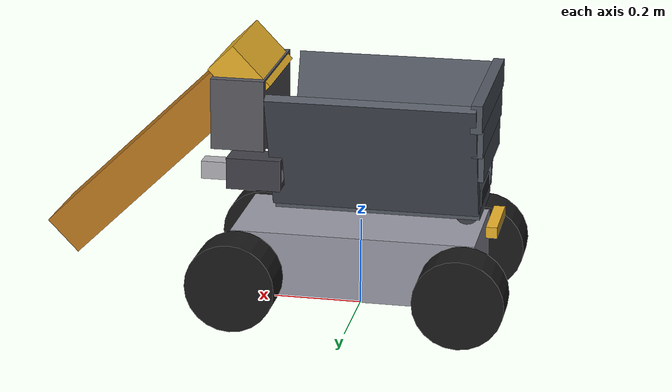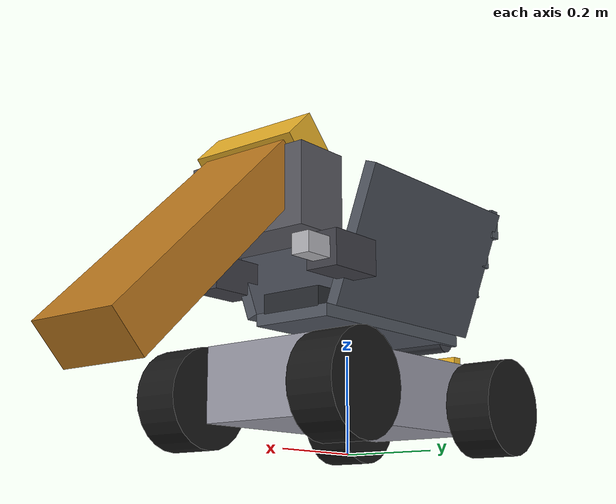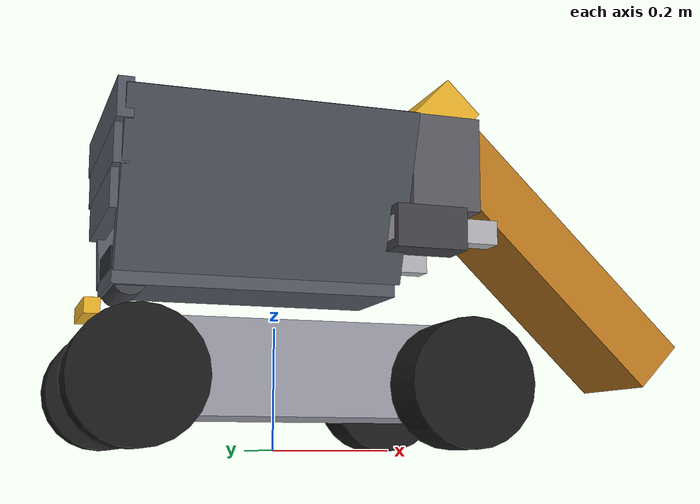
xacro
<?xml version="1.0"?>
<!-- 4-wheel skid-steer rover. Frames follow REP 103/105: x forward, y left, z up.
     Values marked ASSUMED are placeholders: replace them from your CAD/scale. -->
<robot name="rover" xmlns:xacro="http://www.ros.org/wiki/xacro">

  <xacro:arg name="can_interface" default="can0"/>
  <xacro:arg name="protocol" default="spark_max"/>   <!-- test_loopback for vcan bench tests -->

  <!-- ===== Given dimensions (inches converted to metres) ===== -->
  <xacro:property name="inch" value="0.0254"/>
  <xacro:property name="wheel_radius" value="${4 * inch}"/>      <!-- 8 in diameter -->
  <xacro:property name="wheelbase"    value="${20 * inch}"/>     <!-- front/back wheel centres -->
  <xacro:property name="track"        value="${15 * inch}"/>     <!-- left/right wheel centres -->

  <!-- ===== ASSUMED values ===== -->
  <xacro:property name="wheel_width"      value="0.10"/>
  <xacro:property name="wheel_mass"       value="1.0"/>
  <xacro:property name="chassis_length"   value="0.55"/>
  <xacro:property name="chassis_width"    value="0.26"/>   <!-- must fit between inner wheel faces -->
  <xacro:property name="chassis_height"   value="0.15"/>
  <xacro:property name="chassis_clearance" value="0.05"/>  <!-- ground to chassis bottom -->
  <xacro:property name="chassis_mass"     value="20.0"/>
  <xacro:property name="gear_ratio"       value="1.0"/>    <!-- motor revs per wheel rev -->
  <xacro:property name="max_wheel_velocity" value="20.0"/> <!-- wheel rad/s at 100% duty: measure -->

  <!-- ===== Excavation block model (CDR representation; replace with CAD values) ===== -->
  <xacro:property name="excavation_length" value="${23 * inch}"/>
  <xacro:property name="excavation_width" value="0.20"/>
  <xacro:property name="excavation_rail_height" value="0.10"/>
  <xacro:property name="excavation_pivot_x" value="${chassis_length / 2 - 0.02}"/>
  <xacro:property name="excavation_pivot_z" value="0.45"/>
  <!-- Retraction is the deep pose; extension rotates the ladder upward. -->
  <xacro:property name="excavation_angle" value="1.0"/>
  <xacro:property name="actuator_mount_x" value="0.15"/>
  <xacro:property name="actuator_mount_z" value="0.25"/>
  <xacro:property name="actuator_stroke" value="${4 * inch}"/>

  <!-- ===== Static hopper ===== -->
  <xacro:property name="hopper_length" value="0.46"/>
  <xacro:property name="hopper_bottom_width" value="0.18"/>
  <xacro:property name="hopper_top_width" value="0.42"/>
  <xacro:property name="hopper_height" value="0.28"/>
  <xacro:property name="hopper_wall_thickness" value="0.025"/>
  <xacro:property name="hopper_bottom_z" value="0.16"/>
  <xacro:property name="hopper_side_angle" value="${20 * pi / 180}"/>

  <!-- ===== Inertia helpers ===== -->
  <xacro:macro name="cylinder_inertia" params="m r h">
    <inertia ixx="${m / 12 * (3 * r * r + h * h)}" iyy="${m / 12 * (3 * r * r + h * h)}"
             izz="${m * r * r / 2}" ixy="0" ixz="0" iyz="0"/>
  </xacro:macro>
  <xacro:macro name="box_inertia" params="m x y z">
    <inertia ixx="${m / 12 * (y * y + z * z)}" iyy="${m / 12 * (x * x + z * z)}"
             izz="${m / 12 * (x * x + y * y)}" ixy="0" ixz="0" iyz="0"/>
  </xacro:macro>

  <!-- ===== Links ===== -->
  <link name="base_footprint"/>

  <!-- base_link sits at axle height, centred between the four wheels -->
  <joint name="base_footprint_joint" type="fixed">
    <parent link="base_footprint"/>
    <child link="base_link"/>
    <origin xyz="0 0 ${wheel_radius}" rpy="0 0 0"/>
  </joint>

  <link name="base_link">
    <visual>
      <origin xyz="0 0 ${chassis_clearance + chassis_height / 2 - wheel_radius}" rpy="0 0 0"/>
      <geometry><box size="${chassis_length} ${chassis_width} ${chassis_height}"/></geometry>
      <material name="chassis_grey"><color rgba="0.6 0.6 0.65 1"/></material>
    </visual>
    <collision>
      <origin xyz="0 0 ${chassis_clearance + chassis_height / 2 - wheel_radius}" rpy="0 0 0"/>
      <geometry><box size="${chassis_length} ${chassis_width} ${chassis_height}"/></geometry>
    </collision>
    <inertial>
      <origin xyz="0 0 ${chassis_clearance + chassis_height / 2 - wheel_radius}" rpy="0 0 0"/>
      <mass value="${chassis_mass}"/>
      <xacro:box_inertia m="${chassis_mass}" x="${chassis_length}" y="${chassis_width}" z="${chassis_height}"/>
    </inertial>
  </link>

  <!-- The hopper runs from the rear of the excavation area toward the rear
       of the rover. Its open top is wider than its bottom. -->
  <link name="hopper_link">
    <visual>
      <origin xyz="-0.05 0 ${hopper_bottom_z}"/>
      <geometry>
        <box size="${hopper_length} ${hopper_bottom_width} ${hopper_wall_thickness}"/>
      </geometry>
      <material name="hopper_material">
        <color rgba="0.32 0.34 0.38 1"/>
      </material>
    </visual>
    <visual>
      <origin xyz="-0.05 ${-(hopper_bottom_width + hopper_top_width) / 4} ${hopper_bottom_z + hopper_height / 2}"
              rpy="${hopper_side_angle} 0 0"/>
      <geometry>
        <box size="${hopper_length} ${hopper_wall_thickness} ${hopper_height}"/>
      </geometry>
      <material name="hopper_material_left">
        <color rgba="0.32 0.34 0.38 1"/>
      </material>
    </visual>
    <visual>
      <origin xyz="-0.05 ${(hopper_bottom_width + hopper_top_width) / 4} ${hopper_bottom_z + hopper_height / 2}"
              rpy="${-hopper_side_angle} 0 0"/>
      <geometry>
        <box size="${hopper_length} ${hopper_wall_thickness} ${hopper_height}"/>
      </geometry>
      <material name="hopper_material_right">
        <color rgba="0.32 0.34 0.38 1"/>
      </material>
    </visual>
    <visual>
      <origin xyz="${-0.05 - hopper_length / 2} 0 ${hopper_bottom_z + 4 * hopper_height / 9}"/>
      <geometry>
        <box size="${hopper_wall_thickness} ${hopper_bottom_width + 4 * (hopper_top_width - hopper_bottom_width) / 9} ${2 * hopper_height / 9}"/>
      </geometry>
      <material name="hopper_rear_wall_material">
        <color rgba="0.32 0.34 0.38 1"/>
      </material>
    </visual>
    <visual>
      <origin xyz="${-0.05 - hopper_length / 2} 0 ${hopper_bottom_z + 6 * hopper_height / 9}"/>
      <geometry>
        <box size="${hopper_wall_thickness} ${hopper_bottom_width + 6 * (hopper_top_width - hopper_bottom_width) / 9} ${2 * hopper_height / 9}"/>
      </geometry>
      <material name="hopper_rear_wall_material_2">
        <color rgba="0.32 0.34 0.38 1"/>
      </material>
    </visual>
    <visual>
      <origin xyz="${-0.05 - hopper_length / 2} 0 ${hopper_bottom_z + 8 * hopper_height / 9}"/>
      <geometry>
        <box size="${hopper_wall_thickness} ${hopper_bottom_width + 8 * (hopper_top_width - hopper_bottom_width) / 9} ${2 * hopper_height / 9}"/>
      </geometry>
      <material name="hopper_rear_wall_material_3">
        <color rgba="0.32 0.34 0.38 1"/>
      </material>
    </visual>
  </link>
  <joint name="hopper_joint" type="fixed">
    <parent link="base_link"/>
    <child link="hopper_link"/>
    <origin xyz="0 0 0"/>
  </joint>

  <!-- ===== Wheel macro: continuous joint about +y; positive rotation drives the rover forward ===== -->
  <xacro:macro name="wheel" params="name x y">
    <link name="${name}_wheel">
      <visual>
        <origin xyz="0 0 0" rpy="${pi / 2} 0 0"/>
        <geometry><cylinder radius="${wheel_radius}" length="${wheel_width}"/></geometry>
        <material name="wheel_black"><color rgba="0.1 0.1 0.1 1"/></material>
      </visual>
      <collision>
        <origin xyz="0 0 0" rpy="${pi / 2} 0 0"/>
        <geometry><cylinder radius="${wheel_radius}" length="${wheel_width}"/></geometry>
      </collision>
      <inertial>
        <origin xyz="0 0 0" rpy="${pi / 2} 0 0"/>
        <mass value="${wheel_mass}"/>
        <xacro:cylinder_inertia m="${wheel_mass}" r="${wheel_radius}" h="${wheel_width}"/>
      </inertial>
    </link>
    <joint name="${name}_wheel_joint" type="continuous">
      <parent link="base_link"/>
      <child link="${name}_wheel"/>
      <origin xyz="${x} ${y} 0" rpy="0 0 0"/>
      <axis xyz="0 1 0"/>
    </joint>
  </xacro:macro>

  <xacro:wheel name="front_left"  x="${ wheelbase / 2}" y="${ track / 2}"/>
  <xacro:wheel name="rear_left"   x="${-wheelbase / 2}" y="${ track / 2}"/>
  <xacro:wheel name="front_right" x="${ wheelbase / 2}" y="${-track / 2}"/>
  <xacro:wheel name="rear_right"  x="${-wheelbase / 2}" y="${-track / 2}"/>

  <link name="excavation_mount">
    <visual>
      <origin xyz="${excavation_pivot_x} 0 ${excavation_pivot_z - 0.08}"/>
      <geometry><box size="0.12 0.28 0.16"/></geometry>
      <material name="excavation_mount_material">
        <color rgba="0.35 0.35 0.38 1"/>
      </material>
    </visual>
  </link>
  <joint name="excavation_mount_joint" type="fixed">
    <parent link="base_link"/>
    <child link="excavation_mount"/>
    <origin xyz="0 0 0"/>
  </joint>

  <link name="excavation_ladder">
    <visual>
      <origin xyz="${excavation_length / 2} 0 0"/>
      <geometry>
        <box size="${excavation_length} ${excavation_width} ${excavation_rail_height}"/>
      </geometry>
      <material name="excavation_ladder_material">
        <color rgba="0.75 0.48 0.12 1"/>
      </material>
    </visual>
  </link>
  <joint name="excavation_pivot_joint" type="revolute">
    <parent link="base_link"/>
    <child link="excavation_ladder"/>
    <origin xyz="${excavation_pivot_x} 0 ${excavation_pivot_z}"
            rpy="0 ${excavation_angle} 3.14"/>
    <axis xyz="0 1 0"/>
    <limit lower="0.8" upper="1.95" effort="1.0" velocity="1.0"/>
    <!-- The 180-degree yaw reverses the effective pivot direction. -->
    <mimic joint="linear_actuator_left_joint" multiplier="4.9"
            offset="${excavation_angle}"/>
  </joint>

  <link name="bucket_drive_link"/>
  <joint name="bucket_joint" type="continuous">
    <parent link="excavation_ladder"/>
    <child link="bucket_drive_link"/>
    <origin xyz="0.08 0 0.10"/>
    <axis xyz="0 1 0"/>
  </joint>

  <!-- Visual-only bucket carriers. Their positions are updated around this
       rectangular path by bucket_chain_visualizer from bucket_joint state. -->
  <xacro:macro name="chain_bucket" params="index">
    <link name="bucket_chain_${index}_link">
      <visual>
        <origin xyz="0 0 0"/>
        <geometry><box size="0.08 0.24 0.12"/></geometry>
        <material name="moving_bucket_material_${index}">
          <color rgba="0.92 0.70 0.16 1"/>
        </material>
      </visual>
    </link>
    <link name="bucket_chain_${index}_x_link"/>
    <joint name="bucket_chain_${index}_x_joint" type="prismatic">
      <parent link="excavation_ladder"/>
      <child link="bucket_chain_${index}_x_link"/>
      <origin xyz="0 0 0"/>
      <axis xyz="1 0 0"/>
      <limit lower="0" upper="${excavation_length}" effort="1.0" velocity="1.0"/>
    </joint>
    <joint name="bucket_chain_${index}_z_joint" type="prismatic">
      <parent link="bucket_chain_${index}_x_link"/>
      <child link="bucket_chain_${index}_link"/>
      <origin xyz="0 0 0"/>
      <axis xyz="0 0 1"/>
      <limit lower="-0.16" upper="0.16" effort="1.0" velocity="1.0"/>
    </joint>
  </xacro:macro>
  <xacro:chain_bucket index="0"/>
  <xacro:chain_bucket index="1"/>
  <xacro:chain_bucket index="2"/>
  <xacro:chain_bucket index="3"/>

  <link name="linear_actuator_left_body">
    <visual>
      <origin xyz="0 0 0"/>
      <geometry><box size="0.12 0.07 0.07"/></geometry>
      <material name="actuator_body_material">
        <color rgba="0.25 0.25 0.28 1"/>
      </material>
    </visual>
  </link>
  <joint name="linear_actuator_left_body_joint" type="fixed">
    <parent link="base_link"/>
    <child link="linear_actuator_left_body"/>
    <origin xyz="${actuator_mount_x + 0.06} ${track / 2 - 0.04} ${actuator_mount_z}"/>
  </joint>

  <link name="linear_actuator_left_link">
    <visual>
      <origin xyz="0.09 0 0"/>
      <geometry><box size="0.18 0.04 0.04"/></geometry>
      <material name="actuator_rod_material">
        <color rgba="0.70 0.70 0.72 1"/>
      </material>
    </visual>
  </link>
  <joint name="linear_actuator_left_joint" type="prismatic">
    <parent link="base_link"/>
    <child link="linear_actuator_left_link"/>
    <origin xyz="${actuator_mount_x} ${track / 2 - 0.04} ${actuator_mount_z}"/>
    <axis xyz="1 0 0"/>
    <limit lower="0" upper="${actuator_stroke}" effort="1.0" velocity="0.08"/>
  </joint>

  <link name="linear_actuator_right_body">
    <visual>
      <origin xyz="0 0 0"/>
      <geometry><box size="0.12 0.07 0.07"/></geometry>
      <material name="actuator_body_material_2">
        <color rgba="0.25 0.25 0.28 1"/>
      </material>
    </visual>
  </link>
  <joint name="linear_actuator_right_body_joint" type="fixed">
    <parent link="base_link"/>
    <child link="linear_actuator_right_body"/>
    <origin xyz="${actuator_mount_x + 0.06} ${-track / 2 + 0.04} ${actuator_mount_z}"/>
  </joint>

  <link name="linear_actuator_right_link">
    <visual>
      <origin xyz="0.09 0 0"/>
      <geometry><box size="0.18 0.04 0.04"/></geometry>
      <material name="actuator_rod_material_2">
        <color rgba="0.70 0.70 0.72 1"/>
      </material>
    </visual>
  </link>
  <joint name="linear_actuator_right_joint" type="prismatic">
    <parent link="base_link"/>
    <child link="linear_actuator_right_link"/>
    <origin xyz="${actuator_mount_x} ${-track / 2 + 0.04} ${actuator_mount_z}"/>
    <axis xyz="1 0 0"/>
    <limit lower="0" upper="${actuator_stroke}" effort="1.0" velocity="0.08"/>
  </joint>

  <!-- Static conveyor bed along the bottom of the hopper. -->
  <link name="deposition_conveyor_bed">
    <visual>
      <origin xyz="-0.05 0 0.19"/>
      <geometry><box size="0.46 0.14 0.04"/></geometry>
      <material name="conveyor_bed_material">
        <color rgba="0.16 0.17 0.19 1"/>
      </material>
    </visual>
  </link>
  <joint name="deposition_conveyor_bed_joint" type="fixed">
    <parent link="base_link"/>
    <child link="deposition_conveyor_bed"/>
    <origin xyz="0 0 0"/>
  </joint>

  <!-- The deposition motor drives the rear conveyor roller and cleats. -->
  <link name="deposition_link">
    <visual>
      <geometry><cylinder radius="0.0275" length="0.16"/></geometry>
      <origin xyz="0 0 0" rpy="${pi / 2} 0 0"/>
      <material name="conveyor_roller_material">
        <color rgba="0.25 0.26 0.29 1"/>
      </material>
    </visual>
    <visual>
      <origin xyz="0.055 0 0.045"/>
      <geometry><box size="0.025 0.15 0.025"/></geometry>
      <material name="conveyor_cleat_material">
        <color rgba="0.92 0.70 0.16 1"/>
      </material>
    </visual>
    <visual>
      <origin xyz="-0.055 0 -0.045"/>
      <geometry><box size="0.025 0.15 0.025"/></geometry>
      <material name="conveyor_cleat_material_2">
        <color rgba="0.92 0.70 0.16 1"/>
      </material>
    </visual>
  </link>
  <joint name="deposition_joint" type="continuous">
    <parent link="base_link"/>
    <child link="deposition_link"/>
    <origin xyz="-0.25 0 ${hopper_bottom_z}"/>
    <axis xyz="0 -1 0"/>
  </joint>

  <ros2_control name="spark_max_system" type="system">
    <hardware>
      <plugin>spark_max_hardware/SparkMaxSystem</plugin>
      <param name="can_interface">$(arg can_interface)</param>
      <param name="protocol">$(arg protocol)</param>
      <param name="feedback_timeout_ms">200</param>
    </hardware>

    <joint name="front_left_wheel_joint">
      <command_interface name="velocity"/>
      <state_interface name="position"/><state_interface name="velocity"/><state_interface name="current"/>
      <param name="device_id">1</param>
      <param name="max_velocity">${max_wheel_velocity}</param>
      <param name="gear_ratio">${gear_ratio}</param>
    </joint>
    <joint name="rear_left_wheel_joint">
      <command_interface name="velocity"/>
      <state_interface name="position"/><state_interface name="velocity"/><state_interface name="current"/>
      <param name="device_id">3</param>
      <param name="max_velocity">${max_wheel_velocity}</param>
      <param name="gear_ratio">${gear_ratio}</param>
    </joint>
    <joint name="front_right_wheel_joint">
      <command_interface name="velocity"/>
      <state_interface name="position"/><state_interface name="velocity"/><state_interface name="current"/>
      <param name="device_id">2</param>
      <param name="max_velocity">${max_wheel_velocity}</param>
      <param name="gear_ratio">${gear_ratio}</param>
      <param name="invert">true</param>
    </joint>
    <joint name="rear_right_wheel_joint">
      <command_interface name="velocity"/>
      <state_interface name="position"/><state_interface name="velocity"/><state_interface name="current"/>
      <param name="device_id">4</param>
      <param name="max_velocity">${max_wheel_velocity}</param>
      <param name="gear_ratio">${gear_ratio}</param>
      <param name="invert">true</param>
    </joint>

    <!-- Excavation / deposition: raw duty cycle (matches the old duty_cycle_setpoint topics) -->
    <joint name="bucket_joint">
      <command_interface name="duty_cycle"/>
      <state_interface name="position"/><state_interface name="velocity"/><state_interface name="current"/>
      <param name="device_id">5</param>
    </joint>
    <joint name="linear_actuator_left_joint">
      <command_interface name="duty_cycle"/>
      <state_interface name="position"/><state_interface name="velocity"/><state_interface name="current"/>
      <param name="device_id">6</param>
      <param name="max_velocity">0.08</param>
      <param name="min_position">0.0</param>
      <param name="max_position">${actuator_stroke}</param>
    </joint>
    <joint name="linear_actuator_right_joint">
      <command_interface name="duty_cycle"/>
      <state_interface name="position"/><state_interface name="velocity"/><state_interface name="current"/>
      <param name="device_id">7</param>
      <param name="max_velocity">0.08</param>
      <param name="min_position">0.0</param>
      <param name="max_position">${actuator_stroke}</param>
    </joint>
    <joint name="deposition_joint">
      <command_interface name="duty_cycle"/>
      <state_interface name="position"/><state_interface name="velocity"/><state_interface name="current"/>
      <param name="device_id">8</param>
    </joint>
  </ros2_control>
</robot>
